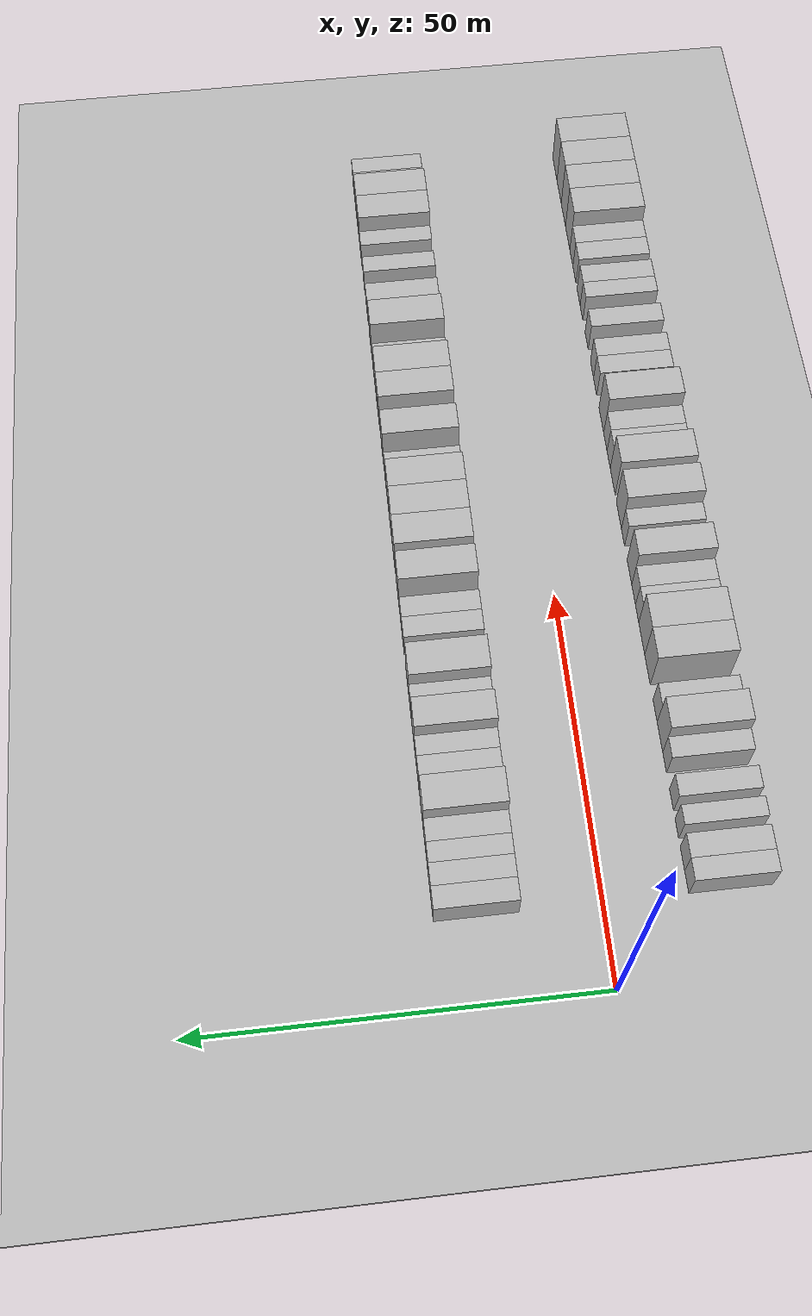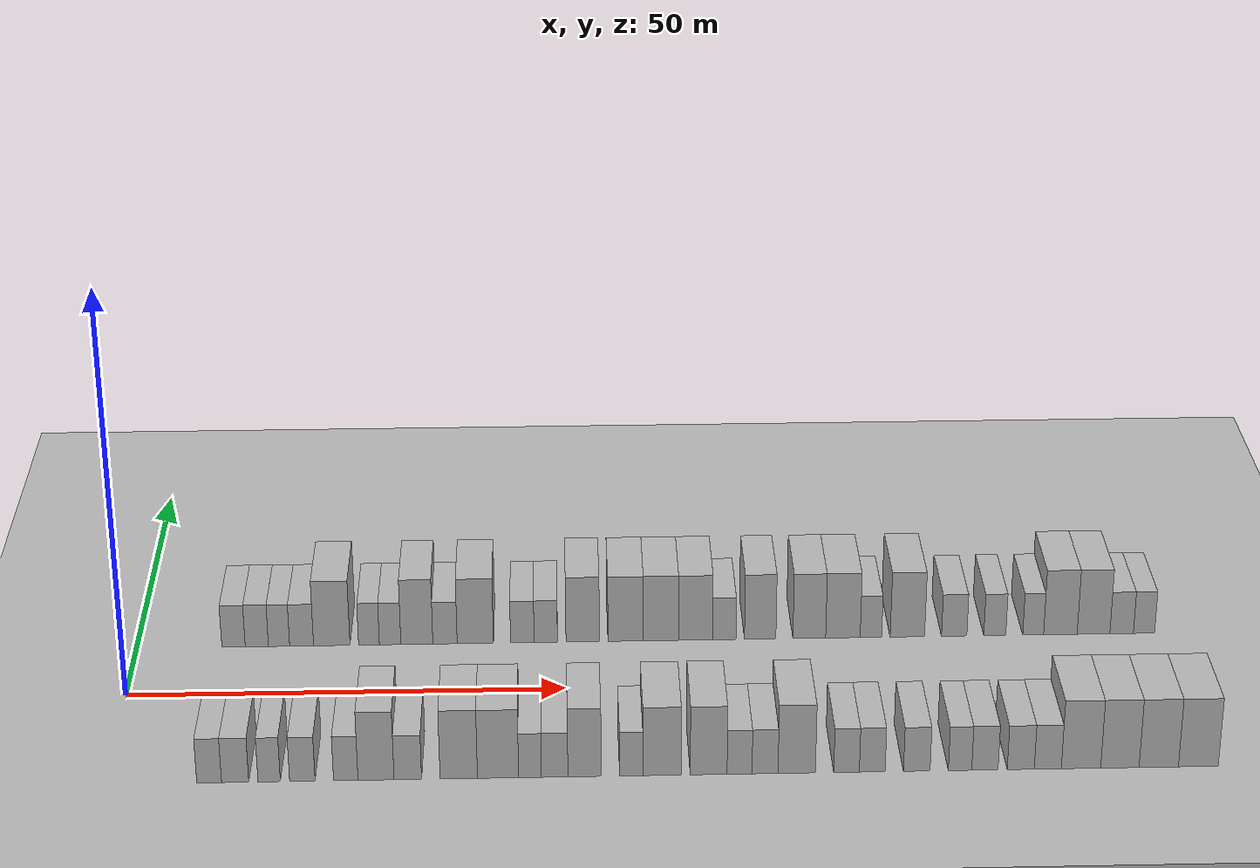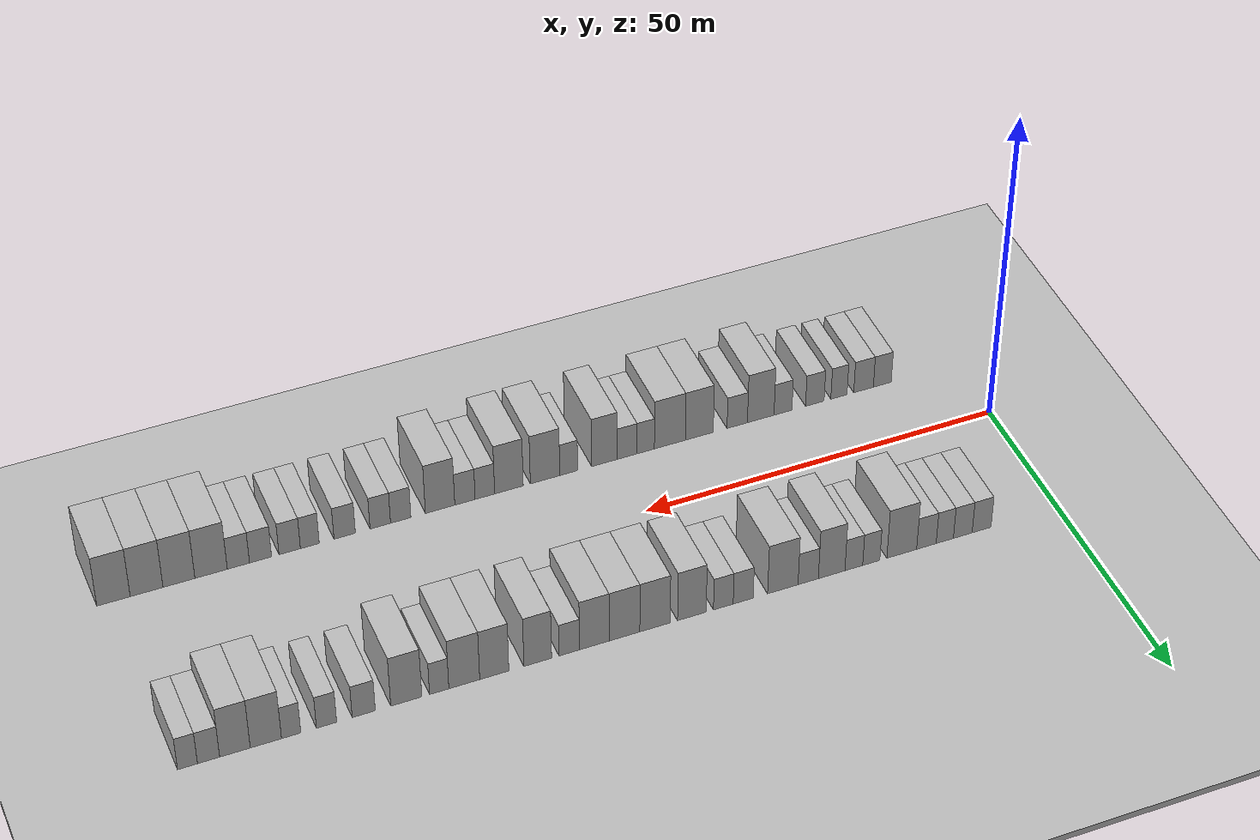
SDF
<sdf version="1.6">
 <world name="default">
  <include><name>ground_plane_1</name><uri>model://HANNAS_ground_plane</uri></include>
  <include>
   <name>ground_plane_2</name>
   <uri>model://HANNAS_ground_plane</uri>
   <pose>100 0 0  0 0 0</pose>
  </include>
  <model name="building_1">
   <static>1</static>
   <pose>11.3598 15.0000 0 0.000000 0.000000 1.570796</pose>
   <link name="link">
    <pose>0 0 3.00 0 0 0</pose>
    <collision name="collision"><geometry><box><size>10.0000 2.7196 6.0000</size></box></geometry></collision>
    <visual name="visual">
     <cast_shadows>0</cast_shadows>
     <geometry><box><size>10.0000 2.7196 6.0000</size></box></geometry>
     <material>
      <script>
       <uri>model://HANNAS_wall/materials/scripts</uri>
       <uri>model://HANNAS_wall/materials/textures</uri>
       <name>vrc/HANNAS_wall</name>
      </script>
     </material>
    </visual>
   </link>
  </model>
  <model name="building_2">
   <static>1</static>
   <pose>14.0683 15.0000 0 0.000000 0.000000 1.570796</pose>
   <link name="link">
    <pose>0 0 3.00 0 0 0</pose>
    <collision name="collision"><geometry><box><size>10.0000 2.6974 6.0000</size></box></geometry></collision>
    <visual name="visual">
     <cast_shadows>0</cast_shadows>
     <geometry><box><size>10.0000 2.6974 6.0000</size></box></geometry>
     <material>
      <script>
       <uri>model://HANNAS_wall/materials/scripts</uri>
       <uri>model://HANNAS_wall/materials/textures</uri>
       <name>vrc/HANNAS_wall</name>
      </script>
     </material>
    </visual>
   </link>
  </model>
  <model name="building_3">
   <static>1</static>
   <pose>16.6501 15.0000 0 0.000000 0.000000 1.570796</pose>
   <link name="link">
    <pose>0 0 3.00 0 0 0</pose>
    <collision name="collision"><geometry><box><size>10.0000 2.4661 6.0000</size></box></geometry></collision>
    <visual name="visual">
     <cast_shadows>0</cast_shadows>
     <geometry><box><size>10.0000 2.4661 6.0000</size></box></geometry>
     <material>
      <script>
       <uri>model://HANNAS_wall/materials/scripts</uri>
       <uri>model://HANNAS_wall/materials/textures</uri>
       <name>vrc/HANNAS_wall</name>
      </script>
     </material>
    </visual>
   </link>
  </model>
  <model name="building_4">
   <static>1</static>
   <pose>19.2767 15.0000 0 0.000000 0.000000 1.570796</pose>
   <link name="link">
    <pose>0 0 3.00 0 0 0</pose>
    <collision name="collision"><geometry><box><size>10.0000 2.7872 6.0000</size></box></geometry></collision>
    <visual name="visual">
     <cast_shadows>0</cast_shadows>
     <geometry><box><size>10.0000 2.7872 6.0000</size></box></geometry>
     <material>
      <script>
       <uri>model://HANNAS_wall/materials/scripts</uri>
       <uri>model://HANNAS_wall/materials/textures</uri>
       <name>vrc/HANNAS_wall</name>
      </script>
     </material>
    </visual>
   </link>
  </model>
  <model name="building_5">
   <static>1</static>
   <pose>22.7889 15.0000 0 0.000000 0.000000 1.570796</pose>
   <link name="link">
    <pose>0 0 4.50 0 0 0</pose>
    <collision name="collision"><geometry><box><size>10.0000 4.2372 9.0000</size></box></geometry></collision>
    <visual name="visual">
     <cast_shadows>0</cast_shadows>
     <geometry><box><size>10.0000 4.2372 9.0000</size></box></geometry>
     <material>
      <script>
       <uri>model://HANNAS_wall/materials/scripts</uri>
       <uri>model://HANNAS_wall/materials/textures</uri>
       <name>vrc/HANNAS_wall</name>
      </script>
     </material>
    </visual>
   </link>
  </model>
  <model name="building_6">
   <static>1</static>
   <pose>27.1172 15.0000 0 0.000000 0.000000 1.570796</pose>
   <link name="link">
    <pose>0 0 3.00 0 0 0</pose>
    <collision name="collision"><geometry><box><size>10.0000 2.4193 6.0000</size></box></geometry></collision>
    <visual name="visual">
     <cast_shadows>0</cast_shadows>
     <geometry><box><size>10.0000 2.4193 6.0000</size></box></geometry>
     <material>
      <script>
       <uri>model://HANNAS_wall/materials/scripts</uri>
       <uri>model://HANNAS_wall/materials/textures</uri>
       <name>vrc/HANNAS_wall</name>
      </script>
     </material>
    </visual>
   </link>
  </model>
  <model name="building_7">
   <static>1</static>
   <pose>29.5809 15.0000 0 0.000000 0.000000 1.570796</pose>
   <link name="link">
    <pose>0 0 3.00 0 0 0</pose>
    <collision name="collision"><geometry><box><size>10.0000 2.5081 6.0000</size></box></geometry></collision>
    <visual name="visual">
     <cast_shadows>0</cast_shadows>
     <geometry><box><size>10.0000 2.5081 6.0000</size></box></geometry>
     <material>
      <script>
       <uri>model://HANNAS_wall/materials/scripts</uri>
       <uri>model://HANNAS_wall/materials/textures</uri>
       <name>vrc/HANNAS_wall</name>
      </script>
     </material>
    </visual>
   </link>
  </model>
  <model name="building_8">
   <static>1</static>
   <pose>32.6991 15.0000 0 0.000000 0.000000 1.570796</pose>
   <link name="link">
    <pose>0 0 4.50 0 0 0</pose>
    <collision name="collision"><geometry><box><size>10.0000 3.7283 9.0000</size></box></geometry></collision>
    <visual name="visual">
     <cast_shadows>0</cast_shadows>
     <geometry><box><size>10.0000 3.7283 9.0000</size></box></geometry>
     <material>
      <script>
       <uri>model://HANNAS_wall/materials/scripts</uri>
       <uri>model://HANNAS_wall/materials/textures</uri>
       <name>vrc/HANNAS_wall</name>
      </script>
     </material>
    </visual>
   </link>
  </model>
  <model name="building_9">
   <static>1</static>
   <pose>35.9825 15.0000 0 0.000000 0.000000 1.570796</pose>
   <link name="link">
    <pose>0 0 3.00 0 0 0</pose>
    <collision name="collision"><geometry><box><size>10.0000 2.8385 6.0000</size></box></geometry></collision>
    <visual name="visual">
     <cast_shadows>0</cast_shadows>
     <geometry><box><size>10.0000 2.8385 6.0000</size></box></geometry>
     <material>
      <script>
       <uri>model://HANNAS_wall/materials/scripts</uri>
       <uri>model://HANNAS_wall/materials/textures</uri>
       <name>vrc/HANNAS_wall</name>
      </script>
     </material>
    </visual>
   </link>
  </model>
  <model name="building_10">
   <static>1</static>
   <pose>39.5182 15.0000 0 0.000000 0.000000 1.570796</pose>
   <link name="link">
    <pose>0 0 4.50 0 0 0</pose>
    <collision name="collision"><geometry><box><size>10.0000 4.2330 9.0000</size></box></geometry></collision>
    <visual name="visual">
     <cast_shadows>0</cast_shadows>
     <geometry><box><size>10.0000 4.2330 9.0000</size></box></geometry>
     <material>
      <script>
       <uri>model://HANNAS_wall/materials/scripts</uri>
       <uri>model://HANNAS_wall/materials/textures</uri>
       <name>vrc/HANNAS_wall</name>
      </script>
     </material>
    </visual>
   </link>
  </model>
  <model name="building_11">
   <static>1</static>
   <pose>45.0125 15.0000 0 0.000000 0.000000 1.570796</pose>
   <link name="link">
    <pose>0 0 3.00 0 0 0</pose>
    <collision name="collision"><geometry><box><size>10.0000 2.7556 6.0000</size></box></geometry></collision>
    <visual name="visual">
     <cast_shadows>0</cast_shadows>
     <geometry><box><size>10.0000 2.7556 6.0000</size></box></geometry>
     <material>
      <script>
       <uri>model://HANNAS_wall/materials/scripts</uri>
       <uri>model://HANNAS_wall/materials/textures</uri>
       <name>vrc/HANNAS_wall</name>
      </script>
     </material>
    </visual>
   </link>
  </model>
  <model name="building_12">
   <static>1</static>
   <pose>47.7491 15.0000 0 0.000000 0.000000 1.570796</pose>
   <link name="link">
    <pose>0 0 3.00 0 0 0</pose>
    <collision name="collision"><geometry><box><size>10.0000 2.7178 6.0000</size></box></geometry></collision>
    <visual name="visual">
     <cast_shadows>0</cast_shadows>
     <geometry><box><size>10.0000 2.7178 6.0000</size></box></geometry>
     <material>
      <script>
       <uri>model://HANNAS_wall/materials/scripts</uri>
       <uri>model://HANNAS_wall/materials/textures</uri>
       <name>vrc/HANNAS_wall</name>
      </script>
     </material>
    </visual>
   </link>
  </model>
  <model name="building_13">
   <static>1</static>
   <pose>52.0646 15.0000 0 0.000000 0.000000 1.570796</pose>
   <link name="link">
    <pose>0 0 4.50 0 0 0</pose>
    <collision name="collision"><geometry><box><size>10.0000 3.9132 9.0000</size></box></geometry></collision>
    <visual name="visual">
     <cast_shadows>0</cast_shadows>
     <geometry><box><size>10.0000 3.9132 9.0000</size></box></geometry>
     <material>
      <script>
       <uri>model://HANNAS_wall/materials/scripts</uri>
       <uri>model://HANNAS_wall/materials/textures</uri>
       <name>vrc/HANNAS_wall</name>
      </script>
     </material>
    </visual>
   </link>
  </model>
  <model name="building_14">
   <static>1</static>
   <pose>57.0853 15.0000 0 0.000000 0.000000 1.570796</pose>
   <link name="link">
    <pose>0 0 4.50 0 0 0</pose>
    <collision name="collision"><geometry><box><size>10.0000 4.1283 9.0000</size></box></geometry></collision>
    <visual name="visual">
     <cast_shadows>0</cast_shadows>
     <geometry><box><size>10.0000 4.1283 9.0000</size></box></geometry>
     <material>
      <script>
       <uri>model://HANNAS_wall/materials/scripts</uri>
       <uri>model://HANNAS_wall/materials/textures</uri>
       <name>vrc/HANNAS_wall</name>
      </script>
     </material>
    </visual>
   </link>
  </model>
  <model name="building_15">
   <static>1</static>
   <pose>61.2078 15.0000 0 0.000000 0.000000 1.570796</pose>
   <link name="link">
    <pose>0 0 4.50 0 0 0</pose>
    <collision name="collision"><geometry><box><size>10.0000 4.1166 9.0000</size></box></geometry></collision>
    <visual name="visual">
     <cast_shadows>0</cast_shadows>
     <geometry><box><size>10.0000 4.1166 9.0000</size></box></geometry>
     <material>
      <script>
       <uri>model://HANNAS_wall/materials/scripts</uri>
       <uri>model://HANNAS_wall/materials/textures</uri>
       <name>vrc/HANNAS_wall</name>
      </script>
     </material>
    </visual>
   </link>
  </model>
  <model name="building_16">
   <static>1</static>
   <pose>65.2668 15.0000 0 0.000000 0.000000 1.570796</pose>
   <link name="link">
    <pose>0 0 4.50 0 0 0</pose>
    <collision name="collision"><geometry><box><size>10.0000 4.0015 9.0000</size></box></geometry></collision>
    <visual name="visual">
     <cast_shadows>0</cast_shadows>
     <geometry><box><size>10.0000 4.0015 9.0000</size></box></geometry>
     <material>
      <script>
       <uri>model://HANNAS_wall/materials/scripts</uri>
       <uri>model://HANNAS_wall/materials/textures</uri>
       <name>vrc/HANNAS_wall</name>
      </script>
     </material>
    </visual>
   </link>
  </model>
  <model name="building_17">
   <static>1</static>
   <pose>68.6369 15.0000 0 0.000000 0.000000 1.570796</pose>
   <link name="link">
    <pose>0 0 3.00 0 0 0</pose>
    <collision name="collision"><geometry><box><size>10.0000 2.7386 6.0000</size></box></geometry></collision>
    <visual name="visual">
     <cast_shadows>0</cast_shadows>
     <geometry><box><size>10.0000 2.7386 6.0000</size></box></geometry>
     <material>
      <script>
       <uri>model://HANNAS_wall/materials/scripts</uri>
       <uri>model://HANNAS_wall/materials/textures</uri>
       <name>vrc/HANNAS_wall</name>
      </script>
     </material>
    </visual>
   </link>
  </model>
  <model name="building_18">
   <static>1</static>
   <pose>72.8464 15.0000 0 0.000000 0.000000 1.570796</pose>
   <link name="link">
    <pose>0 0 4.50 0 0 0</pose>
    <collision name="collision"><geometry><box><size>10.0000 3.6804 9.0000</size></box></geometry></collision>
    <visual name="visual">
     <cast_shadows>0</cast_shadows>
     <geometry><box><size>10.0000 3.6804 9.0000</size></box></geometry>
     <material>
      <script>
       <uri>model://HANNAS_wall/materials/scripts</uri>
       <uri>model://HANNAS_wall/materials/textures</uri>
       <name>vrc/HANNAS_wall</name>
      </script>
     </material>
    </visual>
   </link>
  </model>
  <model name="building_19">
   <static>1</static>
   <pose>78.6091 15.0000 0 0.000000 0.000000 1.570796</pose>
   <link name="link">
    <pose>0 0 4.50 0 0 0</pose>
    <collision name="collision"><geometry><box><size>10.0000 3.8452 9.0000</size></box></geometry></collision>
    <visual name="visual">
     <cast_shadows>0</cast_shadows>
     <geometry><box><size>10.0000 3.8452 9.0000</size></box></geometry>
     <material>
      <script>
       <uri>model://HANNAS_wall/materials/scripts</uri>
       <uri>model://HANNAS_wall/materials/textures</uri>
       <name>vrc/HANNAS_wall</name>
      </script>
     </material>
    </visual>
   </link>
  </model>
  <model name="building_20">
   <static>1</static>
   <pose>82.5596 15.0000 0 0.000000 0.000000 1.570796</pose>
   <link name="link">
    <pose>0 0 4.50 0 0 0</pose>
    <collision name="collision"><geometry><box><size>10.0000 4.0557 9.0000</size></box></geometry></collision>
    <visual name="visual">
     <cast_shadows>0</cast_shadows>
     <geometry><box><size>10.0000 4.0557 9.0000</size></box></geometry>
     <material>
      <script>
       <uri>model://HANNAS_wall/materials/scripts</uri>
       <uri>model://HANNAS_wall/materials/textures</uri>
       <name>vrc/HANNAS_wall</name>
      </script>
     </material>
    </visual>
   </link>
  </model>
  <model name="building_21">
   <static>1</static>
   <pose>85.8498 15.0000 0 0.000000 0.000000 1.570796</pose>
   <link name="link">
    <pose>0 0 3.00 0 0 0</pose>
    <collision name="collision"><geometry><box><size>10.0000 2.5248 6.0000</size></box></geometry></collision>
    <visual name="visual">
     <cast_shadows>0</cast_shadows>
     <geometry><box><size>10.0000 2.5248 6.0000</size></box></geometry>
     <material>
      <script>
       <uri>model://HANNAS_wall/materials/scripts</uri>
       <uri>model://HANNAS_wall/materials/textures</uri>
       <name>vrc/HANNAS_wall</name>
      </script>
     </material>
    </visual>
   </link>
  </model>
  <model name="building_22">
   <static>1</static>
   <pose>90.1329 15.0000 0 0.000000 0.000000 1.570796</pose>
   <link name="link">
    <pose>0 0 4.50 0 0 0</pose>
    <collision name="collision"><geometry><box><size>10.0000 4.0415 9.0000</size></box></geometry></collision>
    <visual name="visual">
     <cast_shadows>0</cast_shadows>
     <geometry><box><size>10.0000 4.0415 9.0000</size></box></geometry>
     <material>
      <script>
       <uri>model://HANNAS_wall/materials/scripts</uri>
       <uri>model://HANNAS_wall/materials/textures</uri>
       <name>vrc/HANNAS_wall</name>
      </script>
     </material>
    </visual>
   </link>
  </model>
  <model name="building_23">
   <static>1</static>
   <pose>95.6422 15.0000 0 0.000000 0.000000 1.570796</pose>
   <link name="link">
    <pose>0 0 3.00 0 0 0</pose>
    <collision name="collision"><geometry><box><size>10.0000 2.9771 6.0000</size></box></geometry></collision>
    <visual name="visual">
     <cast_shadows>0</cast_shadows>
     <geometry><box><size>10.0000 2.9771 6.0000</size></box></geometry>
     <material>
      <script>
       <uri>model://HANNAS_wall/materials/scripts</uri>
       <uri>model://HANNAS_wall/materials/textures</uri>
       <name>vrc/HANNAS_wall</name>
      </script>
     </material>
    </visual>
   </link>
  </model>
  <model name="building_24">
   <static>1</static>
   <pose>100.4237 15.0000 0 0.000000 0.000000 1.570796</pose>
   <link name="link">
    <pose>0 0 3.00 0 0 0</pose>
    <collision name="collision"><geometry><box><size>10.0000 2.5860 6.0000</size></box></geometry></collision>
    <visual name="visual">
     <cast_shadows>0</cast_shadows>
     <geometry><box><size>10.0000 2.5860 6.0000</size></box></geometry>
     <material>
      <script>
       <uri>model://HANNAS_wall/materials/scripts</uri>
       <uri>model://HANNAS_wall/materials/textures</uri>
       <name>vrc/HANNAS_wall</name>
      </script>
     </material>
    </visual>
   </link>
  </model>
  <model name="building_25">
   <static>1</static>
   <pose>104.9449 15.0000 0 0.000000 0.000000 1.570796</pose>
   <link name="link">
    <pose>0 0 3.00 0 0 0</pose>
    <collision name="collision"><geometry><box><size>10.0000 2.4564 6.0000</size></box></geometry></collision>
    <visual name="visual">
     <cast_shadows>0</cast_shadows>
     <geometry><box><size>10.0000 2.4564 6.0000</size></box></geometry>
     <material>
      <script>
       <uri>model://HANNAS_wall/materials/scripts</uri>
       <uri>model://HANNAS_wall/materials/textures</uri>
       <name>vrc/HANNAS_wall</name>
      </script>
     </material>
    </visual>
   </link>
  </model>
  <model name="building_26">
   <static>1</static>
   <pose>108.1541 15.0000 0 0.000000 0.000000 1.570796</pose>
   <link name="link">
    <pose>0 0 4.50 0 0 0</pose>
    <collision name="collision"><geometry><box><size>10.0000 3.9619 9.0000</size></box></geometry></collision>
    <visual name="visual">
     <cast_shadows>0</cast_shadows>
     <geometry><box><size>10.0000 3.9619 9.0000</size></box></geometry>
     <material>
      <script>
       <uri>model://HANNAS_wall/materials/scripts</uri>
       <uri>model://HANNAS_wall/materials/textures</uri>
       <name>vrc/HANNAS_wall</name>
      </script>
     </material>
    </visual>
   </link>
  </model>
  <model name="building_27">
   <static>1</static>
   <pose>112.0646 15.0000 0 0.000000 0.000000 1.570796</pose>
   <link name="link">
    <pose>0 0 4.50 0 0 0</pose>
    <collision name="collision"><geometry><box><size>10.0000 3.8592 9.0000</size></box></geometry></collision>
    <visual name="visual">
     <cast_shadows>0</cast_shadows>
     <geometry><box><size>10.0000 3.8592 9.0000</size></box></geometry>
     <material>
      <script>
       <uri>model://HANNAS_wall/materials/scripts</uri>
       <uri>model://HANNAS_wall/materials/textures</uri>
       <name>vrc/HANNAS_wall</name>
      </script>
     </material>
    </visual>
   </link>
  </model>
  <model name="building_28">
   <static>1</static>
   <pose>115.3843 15.0000 0 0.000000 0.000000 1.570796</pose>
   <link name="link">
    <pose>0 0 3.00 0 0 0</pose>
    <collision name="collision"><geometry><box><size>10.0000 2.7801 6.0000</size></box></geometry></collision>
    <visual name="visual">
     <cast_shadows>0</cast_shadows>
     <geometry><box><size>10.0000 2.7801 6.0000</size></box></geometry>
     <material>
      <script>
       <uri>model://HANNAS_wall/materials/scripts</uri>
       <uri>model://HANNAS_wall/materials/textures</uri>
       <name>vrc/HANNAS_wall</name>
      </script>
     </material>
    </visual>
   </link>
  </model>
  <model name="building_29">
   <static>1</static>
   <pose>118.0255 15.0000 0 0.000000 0.000000 1.570796</pose>
   <link name="link">
    <pose>0 0 3.00 0 0 0</pose>
    <collision name="collision"><geometry><box><size>10.0000 2.5024 6.0000</size></box></geometry></collision>
    <visual name="visual">
     <cast_shadows>0</cast_shadows>
     <geometry><box><size>10.0000 2.5024 6.0000</size></box></geometry>
     <material>
      <script>
       <uri>model://HANNAS_wall/materials/scripts</uri>
       <uri>model://HANNAS_wall/materials/textures</uri>
       <name>vrc/HANNAS_wall</name>
      </script>
     </material>
    </visual>
   </link>
  </model>
  <model name="building_60">
   <static>1</static>
   <pose>11.3346 -15.0000 0 0.000000 0.000000 1.570796</pose>
   <link name="link">
    <pose>0 0 3.00 0 0 0</pose>
    <collision name="collision"><geometry><box><size>10.0000 2.6692 6.0000</size></box></geometry></collision>
    <visual name="visual">
     <cast_shadows>0</cast_shadows>
     <geometry><box><size>10.0000 2.6692 6.0000</size></box></geometry>
     <material>
      <script>
       <uri>model://HANNAS_wall/materials/scripts</uri>
       <uri>model://HANNAS_wall/materials/textures</uri>
       <name>vrc/HANNAS_wall</name>
      </script>
     </material>
    </visual>
   </link>
  </model>
  <model name="building_61">
   <static>1</static>
   <pose>14.1344 -15.0000 0 0.000000 0.000000 1.570796</pose>
   <link name="link">
    <pose>0 0 3.00 0 0 0</pose>
    <collision name="collision"><geometry><box><size>10.0000 2.9302 6.0000</size></box></geometry></collision>
    <visual name="visual">
     <cast_shadows>0</cast_shadows>
     <geometry><box><size>10.0000 2.9302 6.0000</size></box></geometry>
     <material>
      <script>
       <uri>model://HANNAS_wall/materials/scripts</uri>
       <uri>model://HANNAS_wall/materials/textures</uri>
       <name>vrc/HANNAS_wall</name>
      </script>
     </material>
    </visual>
   </link>
  </model>
  <model name="building_62">
   <static>1</static>
   <pose>17.8035 -15.0000 0 0.000000 0.000000 1.570796</pose>
   <link name="link">
    <pose>0 0 3.00 0 0 0</pose>
    <collision name="collision"><geometry><box><size>10.0000 2.4080 6.0000</size></box></geometry></collision>
    <visual name="visual">
     <cast_shadows>0</cast_shadows>
     <geometry><box><size>10.0000 2.4080 6.0000</size></box></geometry>
     <material>
      <script>
       <uri>model://HANNAS_wall/materials/scripts</uri>
       <uri>model://HANNAS_wall/materials/textures</uri>
       <name>vrc/HANNAS_wall</name>
      </script>
     </material>
    </visual>
   </link>
  </model>
  <model name="building_63">
   <static>1</static>
   <pose>21.3801 -15.0000 0 0.000000 0.000000 1.570796</pose>
   <link name="link">
    <pose>0 0 3.00 0 0 0</pose>
    <collision name="collision"><geometry><box><size>10.0000 2.7453 6.0000</size></box></geometry></collision>
    <visual name="visual">
     <cast_shadows>0</cast_shadows>
     <geometry><box><size>10.0000 2.7453 6.0000</size></box></geometry>
     <material>
      <script>
       <uri>model://HANNAS_wall/materials/scripts</uri>
       <uri>model://HANNAS_wall/materials/textures</uri>
       <name>vrc/HANNAS_wall</name>
      </script>
     </material>
    </visual>
   </link>
  </model>
  <model name="building_64">
   <static>1</static>
   <pose>26.0727 -15.0000 0 0.000000 0.000000 1.570796</pose>
   <link name="link">
    <pose>0 0 3.00 0 0 0</pose>
    <collision name="collision"><geometry><box><size>10.0000 2.6398 6.0000</size></box></geometry></collision>
    <visual name="visual">
     <cast_shadows>0</cast_shadows>
     <geometry><box><size>10.0000 2.6398 6.0000</size></box></geometry>
     <material>
      <script>
       <uri>model://HANNAS_wall/materials/scripts</uri>
       <uri>model://HANNAS_wall/materials/textures</uri>
       <name>vrc/HANNAS_wall</name>
      </script>
     </material>
    </visual>
   </link>
  </model>
  <model name="building_65">
   <static>1</static>
   <pose>29.3415 -15.0000 0 0.000000 0.000000 1.570796</pose>
   <link name="link">
    <pose>0 0 4.50 0 0 0</pose>
    <collision name="collision"><geometry><box><size>10.0000 3.8978 9.0000</size></box></geometry></collision>
    <visual name="visual">
     <cast_shadows>0</cast_shadows>
     <geometry><box><size>10.0000 3.8978 9.0000</size></box></geometry>
     <material>
      <script>
       <uri>model://HANNAS_wall/materials/scripts</uri>
       <uri>model://HANNAS_wall/materials/textures</uri>
       <name>vrc/HANNAS_wall</name>
      </script>
     </material>
    </visual>
   </link>
  </model>
  <model name="building_66">
   <static>1</static>
   <pose>32.7775 -15.0000 0 0.000000 0.000000 1.570796</pose>
   <link name="link">
    <pose>0 0 3.00 0 0 0</pose>
    <collision name="collision"><geometry><box><size>10.0000 2.9740 6.0000</size></box></geometry></collision>
    <visual name="visual">
     <cast_shadows>0</cast_shadows>
     <geometry><box><size>10.0000 2.9740 6.0000</size></box></geometry>
     <material>
      <script>
       <uri>model://HANNAS_wall/materials/scripts</uri>
       <uri>model://HANNAS_wall/materials/textures</uri>
       <name>vrc/HANNAS_wall</name>
      </script>
     </material>
    </visual>
   </link>
  </model>
  <model name="building_67">
   <static>1</static>
   <pose>38.2896 -15.0000 0 0.000000 0.000000 1.570796</pose>
   <link name="link">
    <pose>0 0 4.50 0 0 0</pose>
    <collision name="collision"><geometry><box><size>10.0000 4.0501 9.0000</size></box></geometry></collision>
    <visual name="visual">
     <cast_shadows>0</cast_shadows>
     <geometry><box><size>10.0000 4.0501 9.0000</size></box></geometry>
     <material>
      <script>
       <uri>model://HANNAS_wall/materials/scripts</uri>
       <uri>model://HANNAS_wall/materials/textures</uri>
       <name>vrc/HANNAS_wall</name>
      </script>
     </material>
    </visual>
   </link>
  </model>
  <model name="building_68">
   <static>1</static>
   <pose>42.5431 -15.0000 0 0.000000 0.000000 1.570796</pose>
   <link name="link">
    <pose>0 0 4.50 0 0 0</pose>
    <collision name="collision"><geometry><box><size>10.0000 4.4570 9.0000</size></box></geometry></collision>
    <visual name="visual">
     <cast_shadows>0</cast_shadows>
     <geometry><box><size>10.0000 4.4570 9.0000</size></box></geometry>
     <material>
      <script>
       <uri>model://HANNAS_wall/materials/scripts</uri>
       <uri>model://HANNAS_wall/materials/textures</uri>
       <name>vrc/HANNAS_wall</name>
      </script>
     </material>
    </visual>
   </link>
  </model>
  <model name="building_69">
   <static>1</static>
   <pose>46.0042 -15.0000 0 0.000000 0.000000 1.570796</pose>
   <link name="link">
    <pose>0 0 3.00 0 0 0</pose>
    <collision name="collision"><geometry><box><size>10.0000 2.4651 6.0000</size></box></geometry></collision>
    <visual name="visual">
     <cast_shadows>0</cast_shadows>
     <geometry><box><size>10.0000 2.4651 6.0000</size></box></geometry>
     <material>
      <script>
       <uri>model://HANNAS_wall/materials/scripts</uri>
       <uri>model://HANNAS_wall/materials/textures</uri>
       <name>vrc/HANNAS_wall</name>
      </script>
     </material>
    </visual>
   </link>
  </model>
  <model name="building_70">
   <static>1</static>
   <pose>48.6747 -15.0000 0 0.000000 0.000000 1.570796</pose>
   <link name="link">
    <pose>0 0 3.00 0 0 0</pose>
    <collision name="collision"><geometry><box><size>10.0000 2.8760 6.0000</size></box></geometry></collision>
    <visual name="visual">
     <cast_shadows>0</cast_shadows>
     <geometry><box><size>10.0000 2.8760 6.0000</size></box></geometry>
     <material>
      <script>
       <uri>model://HANNAS_wall/materials/scripts</uri>
       <uri>model://HANNAS_wall/materials/textures</uri>
       <name>vrc/HANNAS_wall</name>
      </script>
     </material>
    </visual>
   </link>
  </model>
  <model name="building_71">
   <static>1</static>
   <pose>51.9206 -15.0000 0 0.000000 0.000000 1.570796</pose>
   <link name="link">
    <pose>0 0 4.50 0 0 0</pose>
    <collision name="collision"><geometry><box><size>10.0000 3.6156 9.0000</size></box></geometry></collision>
    <visual name="visual">
     <cast_shadows>0</cast_shadows>
     <geometry><box><size>10.0000 3.6156 9.0000</size></box></geometry>
     <material>
      <script>
       <uri>model://HANNAS_wall/materials/scripts</uri>
       <uri>model://HANNAS_wall/materials/textures</uri>
       <name>vrc/HANNAS_wall</name>
      </script>
     </material>
    </visual>
   </link>
  </model>
  <model name="building_72">
   <static>1</static>
   <pose>56.9875 -15.0000 0 0.000000 0.000000 1.570796</pose>
   <link name="link">
    <pose>0 0 3.00 0 0 0</pose>
    <collision name="collision"><geometry><box><size>10.0000 2.5183 6.0000</size></box></geometry></collision>
    <visual name="visual">
     <cast_shadows>0</cast_shadows>
     <geometry><box><size>10.0000 2.5183 6.0000</size></box></geometry>
     <material>
      <script>
       <uri>model://HANNAS_wall/materials/scripts</uri>
       <uri>model://HANNAS_wall/materials/textures</uri>
       <name>vrc/HANNAS_wall</name>
      </script>
     </material>
    </visual>
   </link>
  </model>
  <model name="building_73">
   <static>1</static>
   <pose>60.3210 -15.0000 0 0.000000 0.000000 1.570796</pose>
   <link name="link">
    <pose>0 0 4.50 0 0 0</pose>
    <collision name="collision"><geometry><box><size>10.0000 4.1487 9.0000</size></box></geometry></collision>
    <visual name="visual">
     <cast_shadows>0</cast_shadows>
     <geometry><box><size>10.0000 4.1487 9.0000</size></box></geometry>
     <material>
      <script>
       <uri>model://HANNAS_wall/materials/scripts</uri>
       <uri>model://HANNAS_wall/materials/textures</uri>
       <name>vrc/HANNAS_wall</name>
      </script>
     </material>
    </visual>
   </link>
  </model>
  <model name="building_74">
   <static>1</static>
   <pose>65.3925 -15.0000 0 0.000000 0.000000 1.570796</pose>
   <link name="link">
    <pose>0 0 4.50 0 0 0</pose>
    <collision name="collision"><geometry><box><size>10.0000 3.9944 9.0000</size></box></geometry></collision>
    <visual name="visual">
     <cast_shadows>0</cast_shadows>
     <geometry><box><size>10.0000 3.9944 9.0000</size></box></geometry>
     <material>
      <script>
       <uri>model://HANNAS_wall/materials/scripts</uri>
       <uri>model://HANNAS_wall/materials/textures</uri>
       <name>vrc/HANNAS_wall</name>
      </script>
     </material>
    </visual>
   </link>
  </model>
  <model name="building_75">
   <static>1</static>
   <pose>68.7497 -15.0000 0 0.000000 0.000000 1.570796</pose>
   <link name="link">
    <pose>0 0 3.00 0 0 0</pose>
    <collision name="collision"><geometry><box><size>10.0000 2.7200 6.0000</size></box></geometry></collision>
    <visual name="visual">
     <cast_shadows>0</cast_shadows>
     <geometry><box><size>10.0000 2.7200 6.0000</size></box></geometry>
     <material>
      <script>
       <uri>model://HANNAS_wall/materials/scripts</uri>
       <uri>model://HANNAS_wall/materials/textures</uri>
       <name>vrc/HANNAS_wall</name>
      </script>
     </material>
    </visual>
   </link>
  </model>
  <model name="building_76">
   <static>1</static>
   <pose>71.5234 -15.0000 0 0.000000 0.000000 1.570796</pose>
   <link name="link">
    <pose>0 0 3.00 0 0 0</pose>
    <collision name="collision"><geometry><box><size>10.0000 2.8274 6.0000</size></box></geometry></collision>
    <visual name="visual">
     <cast_shadows>0</cast_shadows>
     <geometry><box><size>10.0000 2.8274 6.0000</size></box></geometry>
     <material>
      <script>
       <uri>model://HANNAS_wall/materials/scripts</uri>
       <uri>model://HANNAS_wall/materials/textures</uri>
       <name>vrc/HANNAS_wall</name>
      </script>
     </material>
    </visual>
   </link>
  </model>
  <model name="building_77">
   <static>1</static>
   <pose>74.9699 -15.0000 0 0.000000 0.000000 1.570796</pose>
   <link name="link">
    <pose>0 0 4.50 0 0 0</pose>
    <collision name="collision"><geometry><box><size>10.0000 4.0657 9.0000</size></box></geometry></collision>
    <visual name="visual">
     <cast_shadows>0</cast_shadows>
     <geometry><box><size>10.0000 4.0657 9.0000</size></box></geometry>
     <material>
      <script>
       <uri>model://HANNAS_wall/materials/scripts</uri>
       <uri>model://HANNAS_wall/materials/textures</uri>
       <name>vrc/HANNAS_wall</name>
      </script>
     </material>
    </visual>
   </link>
  </model>
  <model name="building_78">
   <static>1</static>
   <pose>80.3984 -15.0000 0 0.000000 0.000000 1.570796</pose>
   <link name="link">
    <pose>0 0 3.00 0 0 0</pose>
    <collision name="collision"><geometry><box><size>10.0000 2.7913 6.0000</size></box></geometry></collision>
    <visual name="visual">
     <cast_shadows>0</cast_shadows>
     <geometry><box><size>10.0000 2.7913 6.0000</size></box></geometry>
     <material>
      <script>
       <uri>model://HANNAS_wall/materials/scripts</uri>
       <uri>model://HANNAS_wall/materials/textures</uri>
       <name>vrc/HANNAS_wall</name>
      </script>
     </material>
    </visual>
   </link>
  </model>
  <model name="building_79">
   <static>1</static>
   <pose>83.1968 -15.0000 0 0.000000 0.000000 1.570796</pose>
   <link name="link">
    <pose>0 0 3.00 0 0 0</pose>
    <collision name="collision"><geometry><box><size>10.0000 2.8055 6.0000</size></box></geometry></collision>
    <visual name="visual">
     <cast_shadows>0</cast_shadows>
     <geometry><box><size>10.0000 2.8055 6.0000</size></box></geometry>
     <material>
      <script>
       <uri>model://HANNAS_wall/materials/scripts</uri>
       <uri>model://HANNAS_wall/materials/textures</uri>
       <name>vrc/HANNAS_wall</name>
      </script>
     </material>
    </visual>
   </link>
  </model>
  <model name="building_80">
   <static>1</static>
   <pose>88.0517 -15.0000 0 0.000000 0.000000 1.570796</pose>
   <link name="link">
    <pose>0 0 3.00 0 0 0</pose>
    <collision name="collision"><geometry><box><size>10.0000 2.9043 6.0000</size></box></geometry></collision>
    <visual name="visual">
     <cast_shadows>0</cast_shadows>
     <geometry><box><size>10.0000 2.9043 6.0000</size></box></geometry>
     <material>
      <script>
       <uri>model://HANNAS_wall/materials/scripts</uri>
       <uri>model://HANNAS_wall/materials/textures</uri>
       <name>vrc/HANNAS_wall</name>
      </script>
     </material>
    </visual>
   </link>
  </model>
  <model name="building_81">
   <static>1</static>
   <pose>92.7761 -15.0000 0 0.000000 0.000000 1.570796</pose>
   <link name="link">
    <pose>0 0 3.00 0 0 0</pose>
    <collision name="collision"><geometry><box><size>10.0000 2.5446 6.0000</size></box></geometry></collision>
    <visual name="visual">
     <cast_shadows>0</cast_shadows>
     <geometry><box><size>10.0000 2.5446 6.0000</size></box></geometry>
     <material>
      <script>
       <uri>model://HANNAS_wall/materials/scripts</uri>
       <uri>model://HANNAS_wall/materials/textures</uri>
       <name>vrc/HANNAS_wall</name>
      </script>
     </material>
    </visual>
   </link>
  </model>
  <model name="building_82">
   <static>1</static>
   <pose>95.4899 -15.0000 0 0.000000 0.000000 1.570796</pose>
   <link name="link">
    <pose>0 0 3.00 0 0 0</pose>
    <collision name="collision"><geometry><box><size>10.0000 2.8830 6.0000</size></box></geometry></collision>
    <visual name="visual">
     <cast_shadows>0</cast_shadows>
     <geometry><box><size>10.0000 2.8830 6.0000</size></box></geometry>
     <material>
      <script>
       <uri>model://HANNAS_wall/materials/scripts</uri>
       <uri>model://HANNAS_wall/materials/textures</uri>
       <name>vrc/HANNAS_wall</name>
      </script>
     </material>
    </visual>
   </link>
  </model>
  <model name="building_83">
   <static>1</static>
   <pose>99.4085 -15.0000 0 0.000000 0.000000 1.570796</pose>
   <link name="link">
    <pose>0 0 3.00 0 0 0</pose>
    <collision name="collision"><geometry><box><size>10.0000 2.9542 6.0000</size></box></geometry></collision>
    <visual name="visual">
     <cast_shadows>0</cast_shadows>
     <geometry><box><size>10.0000 2.9542 6.0000</size></box></geometry>
     <material>
      <script>
       <uri>model://HANNAS_wall/materials/scripts</uri>
       <uri>model://HANNAS_wall/materials/textures</uri>
       <name>vrc/HANNAS_wall</name>
      </script>
     </material>
    </visual>
   </link>
  </model>
  <model name="building_84">
   <static>1</static>
   <pose>102.3649 -15.0000 0 0.000000 0.000000 1.570796</pose>
   <link name="link">
    <pose>0 0 3.00 0 0 0</pose>
    <collision name="collision"><geometry><box><size>10.0000 2.9586 6.0000</size></box></geometry></collision>
    <visual name="visual">
     <cast_shadows>0</cast_shadows>
     <geometry><box><size>10.0000 2.9586 6.0000</size></box></geometry>
     <material>
      <script>
       <uri>model://HANNAS_wall/materials/scripts</uri>
       <uri>model://HANNAS_wall/materials/textures</uri>
       <name>vrc/HANNAS_wall</name>
      </script>
     </material>
    </visual>
   </link>
  </model>
  <model name="building_85">
   <static>1</static>
   <pose>105.9961 -15.0000 0 0.000000 0.000000 1.570796</pose>
   <link name="link">
    <pose>0 0 4.50 0 0 0</pose>
    <collision name="collision"><geometry><box><size>10.0000 4.3038 9.0000</size></box></geometry></collision>
    <visual name="visual">
     <cast_shadows>0</cast_shadows>
     <geometry><box><size>10.0000 4.3038 9.0000</size></box></geometry>
     <material>
      <script>
       <uri>model://HANNAS_wall/materials/scripts</uri>
       <uri>model://HANNAS_wall/materials/textures</uri>
       <name>vrc/HANNAS_wall</name>
      </script>
     </material>
    </visual>
   </link>
  </model>
  <model name="building_86">
   <static>1</static>
   <pose>110.2516 -15.0000 0 0.000000 0.000000 1.570796</pose>
   <link name="link">
    <pose>0 0 4.50 0 0 0</pose>
    <collision name="collision"><geometry><box><size>10.0000 4.2071 9.0000</size></box></geometry></collision>
    <visual name="visual">
     <cast_shadows>0</cast_shadows>
     <geometry><box><size>10.0000 4.2071 9.0000</size></box></geometry>
     <material>
      <script>
       <uri>model://HANNAS_wall/materials/scripts</uri>
       <uri>model://HANNAS_wall/materials/textures</uri>
       <name>vrc/HANNAS_wall</name>
      </script>
     </material>
    </visual>
   </link>
  </model>
  <model name="building_87">
   <static>1</static>
   <pose>114.5097 -15.0000 0 0.000000 0.000000 1.570796</pose>
   <link name="link">
    <pose>0 0 4.50 0 0 0</pose>
    <collision name="collision"><geometry><box><size>10.0000 4.3091 9.0000</size></box></geometry></collision>
    <visual name="visual">
     <cast_shadows>0</cast_shadows>
     <geometry><box><size>10.0000 4.3091 9.0000</size></box></geometry>
     <material>
      <script>
       <uri>model://HANNAS_wall/materials/scripts</uri>
       <uri>model://HANNAS_wall/materials/textures</uri>
       <name>vrc/HANNAS_wall</name>
      </script>
     </material>
    </visual>
   </link>
  </model>
  <model name="building_88">
   <static>1</static>
   <pose>118.8501 -15.0000 0 0.000000 0.000000 1.570796</pose>
   <link name="link">
    <pose>0 0 4.50 0 0 0</pose>
    <collision name="collision"><geometry><box><size>10.0000 4.3717 9.0000</size></box></geometry></collision>
    <visual name="visual">
     <cast_shadows>0</cast_shadows>
     <geometry><box><size>10.0000 4.3717 9.0000</size></box></geometry>
     <material>
      <script>
       <uri>model://HANNAS_wall/materials/scripts</uri>
       <uri>model://HANNAS_wall/materials/textures</uri>
       <name>vrc/HANNAS_wall</name>
      </script>
     </material>
    </visual>
   </link>
  </model>
 </world>
</sdf>
